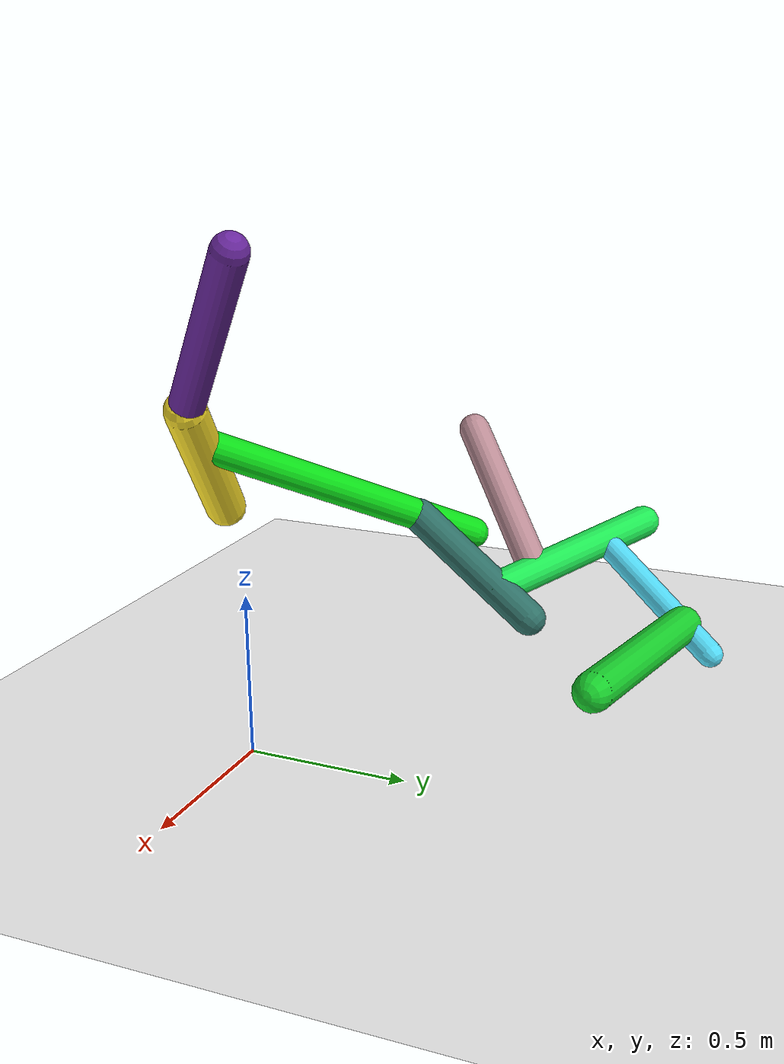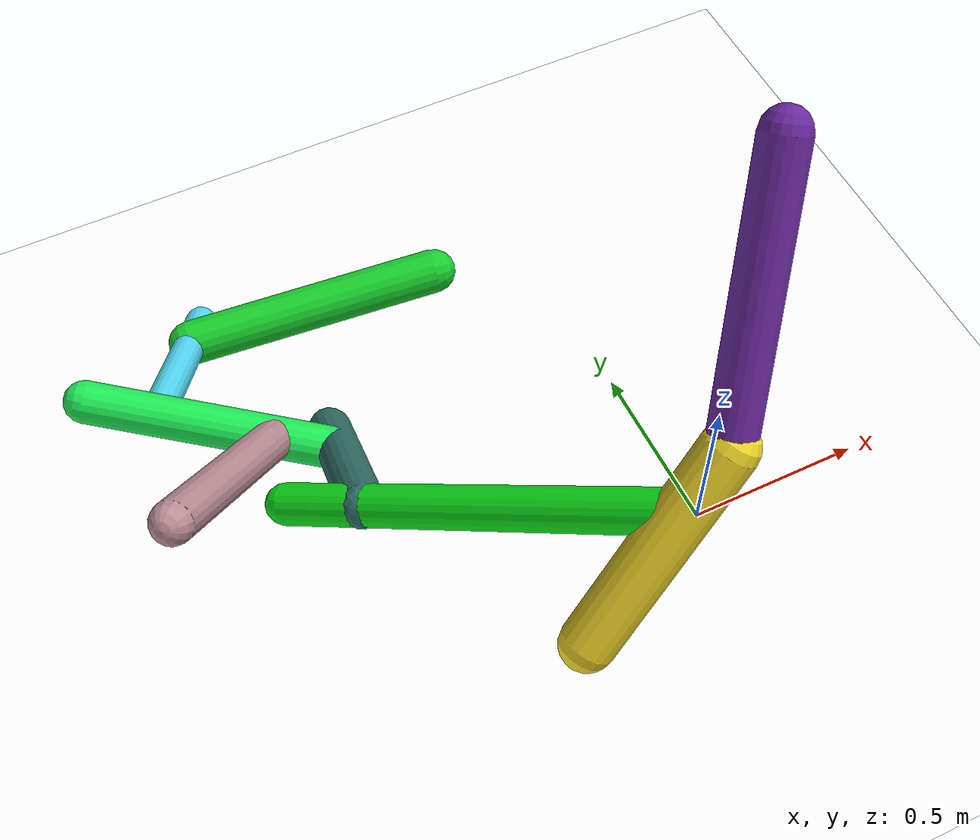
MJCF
<mujoco model="morphology">
  <option timestep="0.01"/>
  <default>
    <default class="/"/>
    <default class="0/"/>
    <default class="0/1/"/>
    <default class="0/1/2/"/>
    <default class="0/1/2/3/"/>
    <default class="0/1/2/3/4/"/>
    <default class="0/1/2/3/4/5/"/>
    <default class="0/1/2/3/4/6/"/>
    <default class="0/1/2/3/4/6/7/"/>
  </default>
  <asset>
    <texture name="texplane" type="2d" builtin="checker" rgb1="0.10000000000000001 0.20000000000000001 0.29999999999999999" rgb2="0.20000000000000001 0.29999999999999999 0.40000000000000002" width="300" height="300"/>
    <material name="MatPlane" class="/" texture="texplane" texrepeat="20 20" specular="1" shininess="1" reflectance="0.5"/>
  </asset>
  <worldbody>
    <light name="//unnamed_light_0" class="/" directional="true" pos="0 0 1.5" dir="0 0 -1.3" cutoff="100" exponent="1" diffuse="1 1 1" specular="0.10000000000000001 0.10000000000000001 0.10000000000000001"/>
    <geom name="ground" class="/" type="plane" size="15 15 0.5" material="MatPlane" rgba="1 1 1 1"/>
    <site name="body" class="/" size="9.9999999999999995e-07 9.9999999999999995e-07 9.9999999999999995e-07" pos="0 0 1.5008791446685792"/>
    <body pos="0 0 1.5008791446685792" name="0/">
      <freejoint name="0/"/>
      <geom name="0/geom" class="0/" type="capsule" contype="1" conaffinity="1" condim="3" size="0.057788911355870838" rgba="0.42121945197522048 0.16035870470840696 0.63046025176141285 1" friction="0.59999999999999998 0.10000000000000001 0.10000000000000001" fromto="0 0 0 -0.23825689577322817 -0.32761651563936683 -0.53113406687518527"/>
      <site name="0/end0" class="0/" size="0.0050000000000000001" pos="-0.23825689577322817 -0.32761651563936683 -0.53113406687518527"/>
      <site name="0/attach1" class="0/" size="9.9999999999999995e-07 9.9999999999999995e-07 9.9999999999999995e-07" pos="-0.2367744229020699 -0.32557803278663533 -0.52782926496154048"/>
      <body pos="-0.2367744229020699 -0.32557803278663533 -0.52782926496154048" name="0/1/">
        <geom name="0/1/geom" class="0/1/" type="capsule" contype="1" conaffinity="1" condim="3" size="0.067897930521804525" rgba="0.98102633584485222 0.87558009540942139 0.16294058011593004 1" friction="0.59999999999999998 0.10000000000000001 0.10000000000000001" fromto="0 0 0 -0.36879972450584386 -0.10134717637788271 -0.42491245570943753"/>
        <site name="0/1/end1" class="0/1/" size="0.0050000000000000001" pos="-0.36879972450584386 -0.10134717637788271 -0.42491245570943753"/>
        <site name="0/1/attach2" class="0/1/" size="9.9999999999999995e-07 9.9999999999999995e-07 9.9999999999999995e-07" pos="-0.1148534675643792 -0.03156204807488712 -0.13232837691219937"/>
        <body pos="-0.1148534675643792 -0.03156204807488712 -0.13232837691219937" name="0/1/2/">
          <geom name="0/1/2/geom" class="0/1/2/" type="capsule" contype="1" conaffinity="1" condim="3" size="0.054179037848881756" rgba="0.049453201600252794 0.88046446089413222 0.099333012218883909 1" friction="0.59999999999999998 0.10000000000000001 0.10000000000000001" fromto="0 0 0 -0.71103346293671033 0.65017098347491831 -0.43576916394270621"/>
          <site name="0/1/2/end2" class="0/1/2/" size="0.0050000000000000001" pos="-0.71103346293671033 0.65017098347491831 -0.43576916394270621"/>
          <site name="0/1/2/attach3" class="0/1/2/" size="9.9999999999999995e-07 9.9999999999999995e-07 9.9999999999999995e-07" pos="-0.55798175439948317 0.51022007391973334 -0.34196877542961762"/>
          <body pos="-0.55798175439948317 0.51022007391973334 -0.34196877542961762" name="0/1/2/3/">
            <joint name="0/1/2/3/joint/" class="0/1/2/" type="hinge" axis="-0.74018041388366795 -0.5585552230391555 0.37436481901840263" limited="true" range="-58.109199664488017 58.109199664488017"/>
            <geom name="0/1/2/3/geom" class="0/1/2/3/" type="capsule" contype="1" conaffinity="1" condim="3" size="0.057848119010791677" rgba="0.18990090643520163 0.4478880941821124 0.41149948814718429 1" friction="0.59999999999999998 0.10000000000000001 0.10000000000000001" fromto="0 0 0 0.065296098654225365 0.42857598033610489 -0.29302748521612143"/>
            <site name="0/1/2/3/end3" class="0/1/2/3/" size="0.0050000000000000001" pos="0.065296098654225365 0.42857598033610489 -0.29302748521612143"/>
            <site name="0/1/2/3/attach4" class="0/1/2/3/" size="9.9999999999999995e-07 9.9999999999999995e-07 9.9999999999999995e-07" pos="0.046692197923655171 0.3064678428208516 -0.20953927751848467"/>
            <body pos="0.046692197923655171 0.3064678428208516 -0.20953927751848467" name="0/1/2/3/4/">
              <joint name="0/1/2/3/4/joint/" class="0/1/2/3/" type="hinge" axis="-0.99218368533877443 0.10301012773371326 -0.070430448897134706" limited="true" range="-60.098187038605531 60.098187038605531"/>
              <geom name="0/1/2/3/4/geom" class="0/1/2/3/4/" type="capsule" contype="1" conaffinity="1" condim="3" size="0.057335750075614783" rgba="0.1180925830513021 0.921574725964039 0.33069376766414482 1" friction="0.59999999999999998 0.10000000000000001 0.10000000000000001" fromto="0 0 0 -0.55669449513115632 0.35062247202217733 0.11187657277147589"/>
              <site name="0/1/2/3/4/end4" class="0/1/2/3/4/" size="0.0050000000000000001" pos="-0.55669449513115632 0.35062247202217733 0.11187657277147589"/>
              <site name="0/1/2/3/4/attach5" class="0/1/2/3/4/" size="9.9999999999999995e-07 9.9999999999999995e-07 9.9999999999999995e-07" pos="-0.13839945886651275 0.087168026302964816 0.027813562495825245"/>
              <body pos="-0.13839945886651275 0.087168026302964816 0.027813562495825245" name="0/1/2/3/4/5/">
                <geom name="0/1/2/3/4/5/geom" class="0/1/2/3/4/5/" type="capsule" contype="1" conaffinity="1" condim="3" size="0.054981813023736406" rgba="0.7498917125782476 0.56463243989195289 0.5991701466046746 1" friction="0.59999999999999998 0.10000000000000001 0.10000000000000001" fromto="0 0 0 -0.3470280938275076 -0.36239834439796492 0.3845367729441338"/>
                <site name="0/1/2/3/4/5/end5" class="0/1/2/3/4/5/" size="0.0050000000000000001" pos="-0.3470280938275076 -0.36239834439796492 0.3845367729441338"/>
              </body>
              <site name="0/1/2/3/4/attach6" class="0/1/2/3/4/" size="9.9999999999999995e-07 9.9999999999999995e-07 9.9999999999999995e-07" pos="-0.40104607239102014 0.25259054387343227 0.080596557887639628"/>
              <body pos="-0.40104607239102014 0.25259054387343227 0.080596557887639628" name="0/1/2/3/4/6/">
                <geom name="0/1/2/3/4/6/geom" class="0/1/2/3/4/6/" type="capsule" contype="1" conaffinity="1" condim="3" size="0.044042639952635305" rgba="0.32793775431004091 0.86673533365126609 0.97535734359424997 1" friction="0.59999999999999998 0.10000000000000001 0.10000000000000001" fromto="0 0 0 0.24252662359745036 0.44932915171866661 -0.26981005618654424"/>
                <site name="0/1/2/3/4/6/end6" class="0/1/2/3/4/6/" size="0.0050000000000000001" pos="0.24252662359745036 0.44932915171866661 -0.26981005618654424"/>
                <site name="0/1/2/3/4/6/attach7" class="0/1/2/3/4/6/" size="9.9999999999999995e-07 9.9999999999999995e-07 9.9999999999999995e-07" pos="0.18238993264487946 0.33791388550139362 -0.20290818898487434"/>
                <body pos="0.18238993264487946 0.33791388550139362 -0.20290818898487434" name="0/1/2/3/4/6/7/">
                  <joint name="0/1/2/3/4/6/7/joint/" class="0/1/2/3/4/6/" type="hinge" axis="-2.7755575615628914e-17 0.51479393860964073 0.85731394527954197" limited="true" range="-57.599396976606315 57.599396976606315"/>
                  <geom name="0/1/2/3/4/6/7/geom" class="0/1/2/3/4/6/7/" type="capsule" contype="1" conaffinity="1" condim="3" size="0.063585062463643621" rgba="0.099232170112244722 0.82706947904960471 0.18172787542475355 1" friction="0.59999999999999998 0.10000000000000001 0.10000000000000001" fromto="0 0 0 0.72129268253999457 -0.095344563122745196 0.042355324778566628"/>
                  <site name="0/1/2/3/4/6/7/end7" class="0/1/2/3/4/6/7/" size="0.0050000000000000001" pos="0.72129268253999457 -0.095344563122745196 0.042355324778566628"/>
                </body>
              </body>
            </body>
          </body>
        </body>
      </body>
      <camera name="0/iso" class="0/" mode="trackcom" pos="-2.2999999999999998 -2.2999999999999998 1" xyaxes="0.45000000000000001 -0.45000000000000001 0 0.29999999999999999 0.14999999999999999 0.93999999999999995"/>
    </body>
  </worldbody>
  <actuator>
    <motor name="0/1/2/3/motor" class="0/1/2/3/" ctrllimited="true" ctrlrange="-1 1" gear="51" joint="0/1/2/3/joint/"/>
    <motor name="0/1/2/3/4/motor" class="0/1/2/3/4/" ctrllimited="true" ctrlrange="-1 1" gear="90" joint="0/1/2/3/4/joint/"/>
    <motor name="0/1/2/3/4/6/7/motor" class="0/1/2/3/4/6/7/" ctrllimited="true" ctrlrange="-1 1" gear="98" joint="0/1/2/3/4/6/7/joint/"/>
  </actuator>
  <sensor>
    <subtreelinvel name="velocity" body="0/"/>
  </sensor>
</mujoco>
